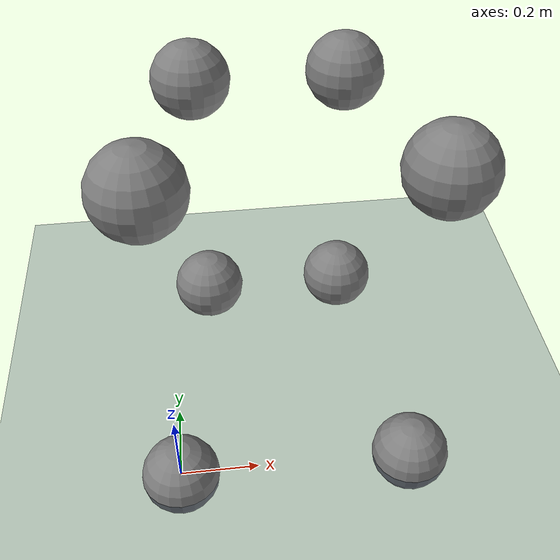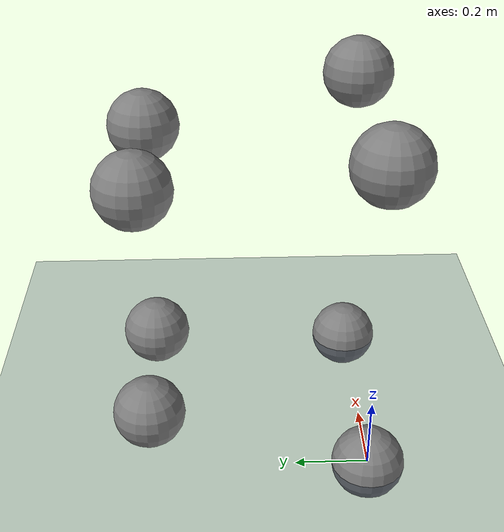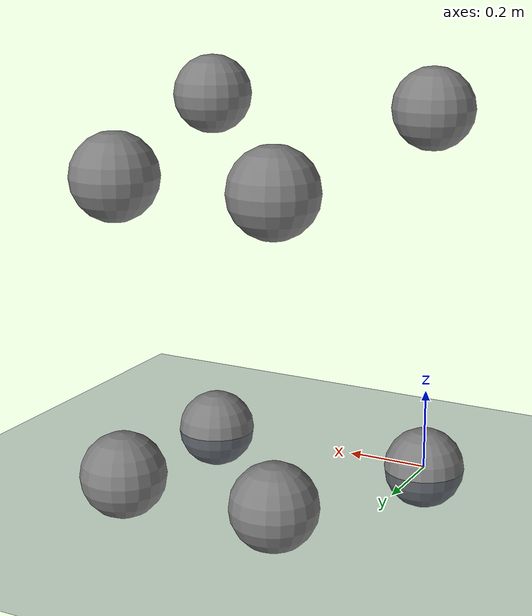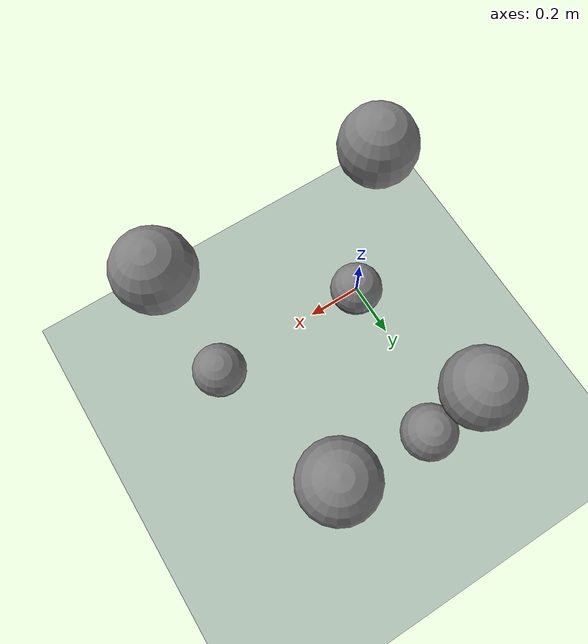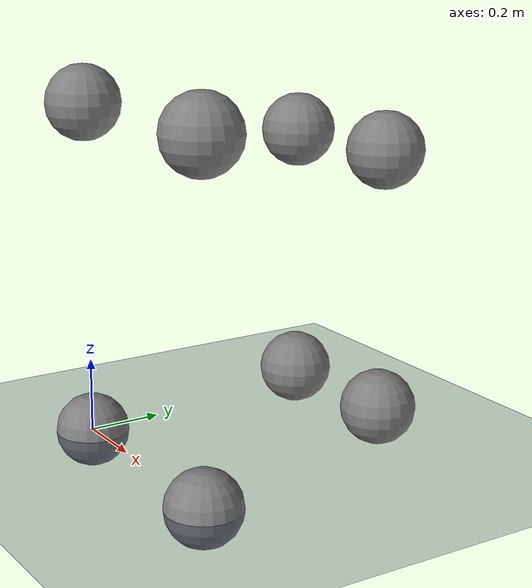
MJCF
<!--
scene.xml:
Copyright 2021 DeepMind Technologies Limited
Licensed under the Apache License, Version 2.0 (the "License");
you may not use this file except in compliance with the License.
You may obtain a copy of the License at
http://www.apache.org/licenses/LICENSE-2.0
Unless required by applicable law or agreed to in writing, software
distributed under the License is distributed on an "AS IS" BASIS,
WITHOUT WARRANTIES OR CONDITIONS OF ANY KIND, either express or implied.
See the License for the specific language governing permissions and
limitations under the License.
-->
<mujoco model="unnamed_model">
  <include file="scene.xml"/>
  <default>
    <default class="/"/>
  </default>
  <worldbody>
    <body><freejoint/><geom name="point_mass_1" class="/" type="sphere" size="0.10000000000000001" mass="0.01" pos="0.1057962104678154 0.60000002384185791 0.10579618066549301"/></body>
    <body><freejoint/><geom name="point_mass_0" class="/" type="sphere" size="0.10000000000000001" mass="0.01" pos="0.1057962104678154 0.60000002384185791 0.79420381784439087"/></body>
    <body><freejoint/><geom name="point_mass_2" class="/" type="sphere" size="0.10000000000000001" mass="0.01" pos="0 0 0.89999997615814209"/></body>
    <body><freejoint/><geom name="point_mass_3" class="/" type="sphere" size="0.10000000000000001" mass="0.01" pos="0 0 0"/></body>
    <body><freejoint/><geom name="point_mass_4" class="/" type="sphere" size="0.10000000000000001" mass="0.01" pos="0.4942038357257843 0.60000002384185791 0.79420381784439087"/></body>
    <body><freejoint/><geom name="point_mass_5" class="/" type="sphere" size="0.10000000000000001" mass="0.01" pos="0.60000002384185791 0 0.89999997615814209"/></body>
    <body><freejoint/><geom name="point_mass_6" class="/" type="sphere" size="0.10000000000000001" mass="0.01" pos="0.4942038357257843 0.60000002384185791 0.10579618066549301"/></body>
    <body><freejoint/><geom name="point_mass_7" class="/" type="sphere" size="0.10000000000000001" mass="0.01" pos="0.60000002384185791 0 0"/></body>
  </worldbody>
</mujoco>

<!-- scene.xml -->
<mujoco>
  <compiler meshdir="asset" texturedir="asset"/>
  <statistic extent="1.5" meansize=".05"/>

  <option timestep="0.005" jacobian="sparse"/>

  <visual>
    <rgba haze="0.15 0.25 0.35 1"/>
    <quality shadowsize="4096"/>
    <map stiffness="700" shadowscale="0.5" fogstart="10" fogend="15" zfar="40" haze="0.3"/>
  </visual>

  <asset>
    <texture type="skybox" builtin="gradient" rgb1="0.3 0.5 0.7" rgb2="0 0 0" width="512" height="512"/>
    <texture name="texplane" type="2d" builtin="checker" rgb1=".2 .3 .4" rgb2=".1 0.15 0.2"
      width="512" height="512" mark="cross" markrgb=".8 .8 .8"/>

    <material name="matplane" reflectance="0.3" texture="texplane" texrepeat="1 1" texuniform="true"/>

  </asset>

  <worldbody>
    <light directional="true" diffuse=".4 .4 .4" specular="0.1 0.1 0.1" pos="0 0 5.0" dir="0 0 -1" castshadow="false"/>
    <light directional="true" diffuse=".6 .6 .6" specular="0.2 0.2 0.2" pos="0 0 4" dir="0 0 -1"/>

    <geom name="ground" type="plane" size="0 0 1" pos="0 0 0" quat="1 0 0 0" material="matplane" condim="1"/>

  </worldbody>
</mujoco>
